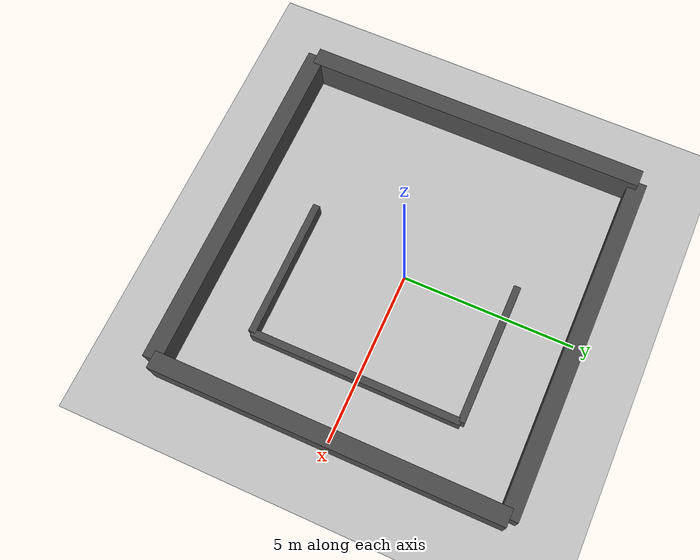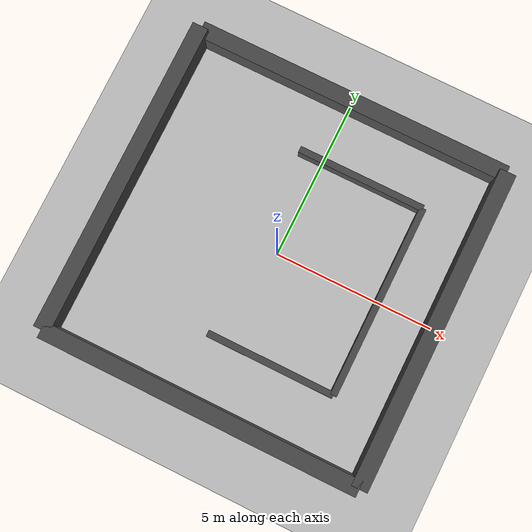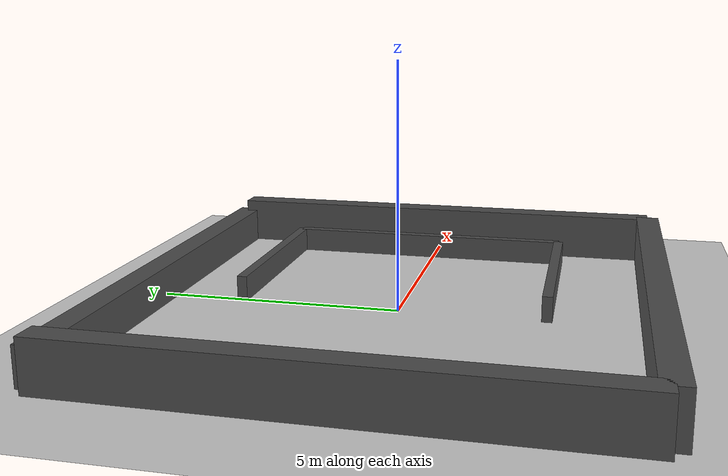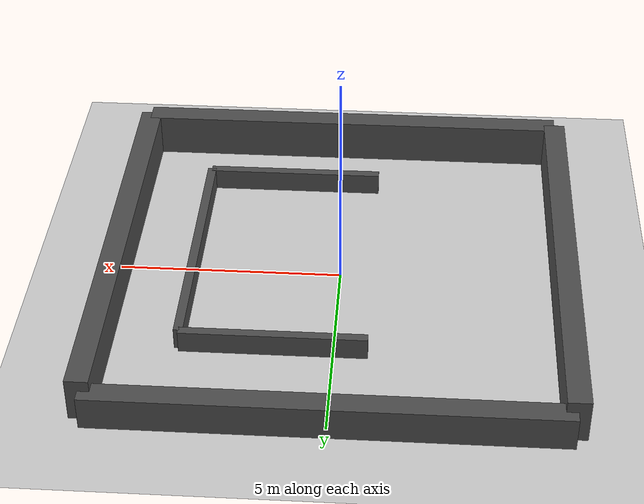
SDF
<sdf version="1.6">
  <world name="Obstacle_3">
    <physics name="1ms" type="ignored">
      <max_step_size>0.001</max_step_size>
      <real_time_factor>1.0</real_time_factor>
    </physics>
    <plugin
      filename="gz-sim-physics-system"
      name="gz::sim::systems::Physics">
    </plugin>
    <plugin
      filename="gz-sim-user-commands-system"
      name="gz::sim::systems::UserCommands">
    </plugin>
    <plugin
      filename="gz-sim-scene-broadcaster-system"
      name="gz::sim::systems::SceneBroadcaster">
    </plugin>
    <plugin
      filename="gz-sim-sensors-system"
      name="gz::sim::systems::Sensors">
      <render_engine>ogre2</render_engine>
    </plugin>
    <plugin
      filename="gz-sim-contact-system"
      name="gz::sim::systems::Contact">
    </plugin>

    <light type="directional" name="sun">
      <cast_shadows>true</cast_shadows>
      <pose>0 0 10 0 0 0</pose>
      <diffuse>0.8 0.8 0.8 1</diffuse>
      <specular>0.2 0.2 0.2 1</specular>
      <attenuation>
        <range>1000</range>
        <constant>0.9</constant>
        <linear>0.01</linear>
        <quadratic>0.001</quadratic>
      </attenuation>
      <direction>-0.5 0.1 -0.9</direction>
    </light>

    <model name="ground_plane">
      <static>true</static>
      <link name="link">
        <collision name="collision">
          <geometry>
            <plane>
              <normal>0 0 1</normal>
              <size>200 150</size>
            </plane>
          </geometry>
        </collision>
        <visual name="visual">
          <geometry>
            <plane>
              <normal>0 0 1</normal>
              <size>200 150</size>
            </plane>
          </geometry>
          <material>
            <ambient>0.8 0.8 0.8 1</ambient>
            <diffuse>0.8 0.8 0.8 1</diffuse>
            <specular>0.8 0.8 0.8 1</specular>
          </material>
        </visual>
      </link>
    </model>

    <!-- MUR NORD OBSTACLE -->
    <model name="wall_north_obstacle">
      <static>true</static>
      <link name="link">
        <pose>1.25 3 0.5 0 0 0</pose>
        <collision name="collision">
          <geometry>
            <box>
              <size>4 0.2 0.5</size>
            </box>
          </geometry>
        </collision>
        <visual name="visual">
          <geometry>
            <box>
              <size>4 0.2 0.5</size>
            </box>
          </geometry>
          <material>
            <ambient>0.3 0.3 0.3 1</ambient>
          </material>
        </visual>
      </link>
    </model>

    <!-- MUR SUD OBSTACLE -->
    <model name="wall_south_obstacle">
      <static>true</static>
      <link name="link">
        <pose>1.25 -3 0.5 0 0 0</pose>
        <collision name="collision">
          <geometry>
            <box>
              <size>4 0.2 0.5</size>
            </box>
          </geometry>
        </collision>
        <visual name="visual">
          <geometry>
            <box>
              <size>4 0.2 0.5</size>
            </box>
          </geometry>
          <material>
            <ambient>0.3 0.3 0.3 1</ambient>
          </material>
        </visual>
      </link>
    </model>

    <!-- MUR EST OBSTACLE-->
    <model name="wall_east_obstacle">
      <static>true</static>
      <link name="link">
        <pose>3.25 0 0.5 0 0 0</pose>
        <collision name="collision">
          <geometry>
            <box>
              <size>0.2 6 0.5</size>
            </box>
          </geometry>
        </collision>
        <visual name="visual">
          <geometry>
            <box>
              <size>0.2 6 0.5</size>
            </box>
          </geometry>
          <material>
            <ambient>0.3 0.3 0.3 1</ambient>
          </material>
        </visual>
      </link>
    </model>

    <!-- MUR NORD -->
    <model name="wall_north">
      <static>true</static>
      <link name="link">
        <pose>0 5 0.25 0 0 0</pose>
        <collision name="collision">
          <geometry>
            <box>
              <size>10 0.5 1</size>
            </box>
          </geometry>
        </collision>
        <visual name="visual">
          <geometry>
            <box>
              <size>10 0.5 1</size>
            </box>
          </geometry>
          <material>
            <ambient>0.3 0.3 0.3 1</ambient>
          </material>
        </visual>
      </link>
    </model>

    <!-- MUR SUD -->
    <model name="wall_south">
      <static>true</static>
      <link name="link">
        <pose>0 -5 0.5 0 0 0</pose>
        <collision name="collision">
          <geometry>
            <box>
              <size>10 0.5 1</size>
            </box>
          </geometry>
        </collision>
        <visual name="visual">
          <geometry>
            <box>
              <size>10 0.5 1</size>
            </box>
          </geometry>
          <material>
            <ambient>0.3 0.3 0.3 1</ambient>
          </material>
        </visual>
      </link>
    </model>

    <!-- MUR EST -->
    <model name="wall_east">
      <static>true</static>
      <link name="link">
        <pose>5 0 0.5 0 0 0</pose>
        <collision name="collision">
          <geometry>
            <box>
              <size>0.5 10 1</size>
            </box>
          </geometry>
        </collision>
        <visual name="visual">
          <geometry>
            <box>
              <size>0.5 10 1</size>
            </box>
          </geometry>
          <material>
            <ambient>0.3 0.3 0.3 1</ambient>
          </material>
        </visual>
      </link>
    </model>

    <!-- MUR OUEST -->
    <model name="wall_west">
      <static>true</static>
      <link name="link">
        <pose>-5 0 0.5 0 0 0</pose>
        <collision name="collision">
          <geometry>
            <box>
              <size>0.5 10 1</size>
            </box>
          </geometry>
        </collision>
        <visual name="visual">
          <geometry>
            <box>
              <size>0.5 10 1</size>
            </box>
          </geometry>
          <material>
            <ambient>0.3 0.3 0.3 1</ambient>
          </material>
        </visual>
      </link>
    </model>

  </world>
</sdf>
